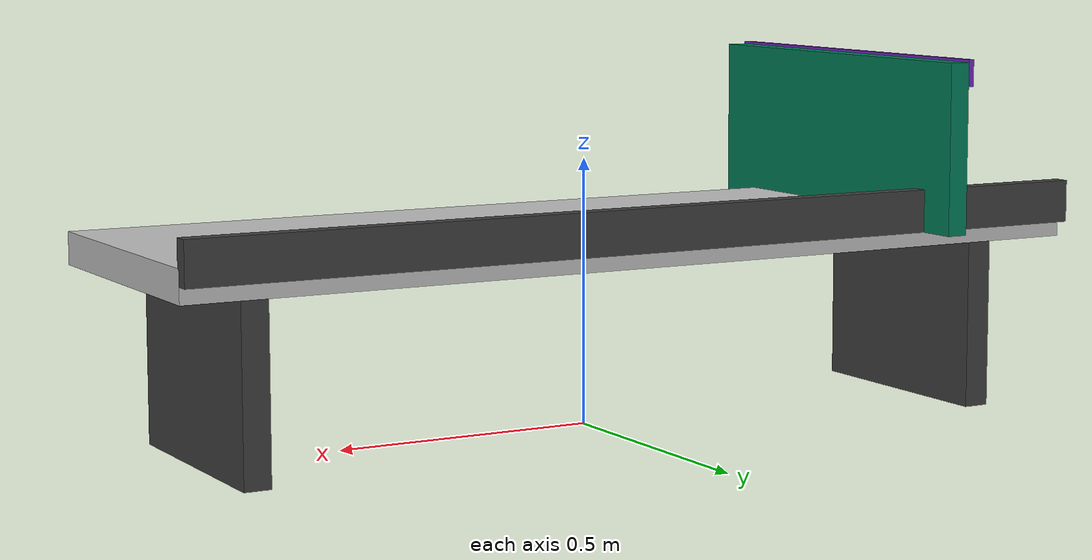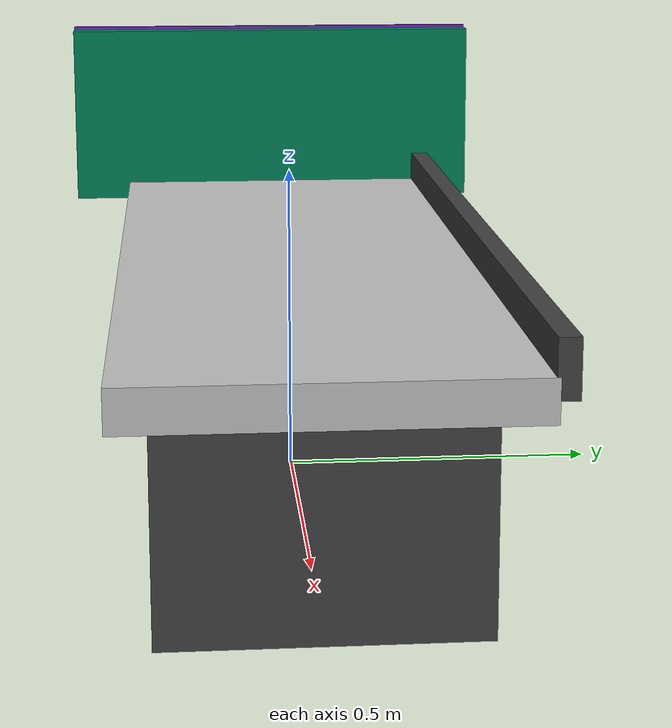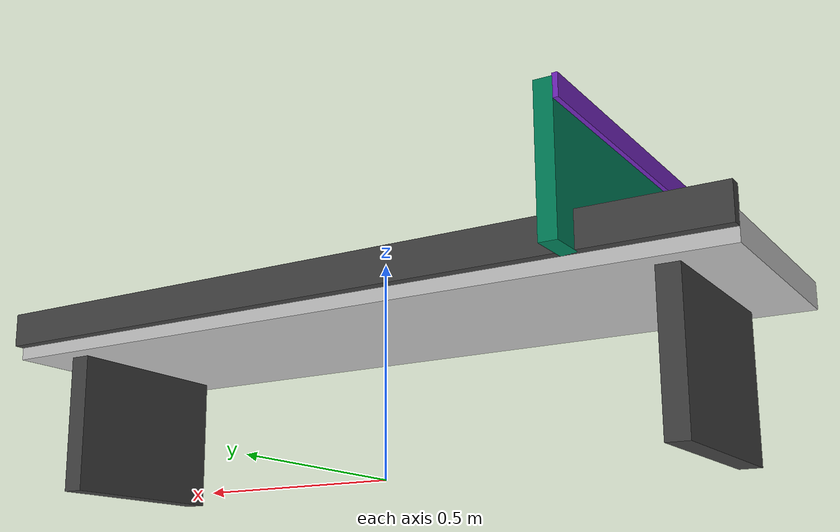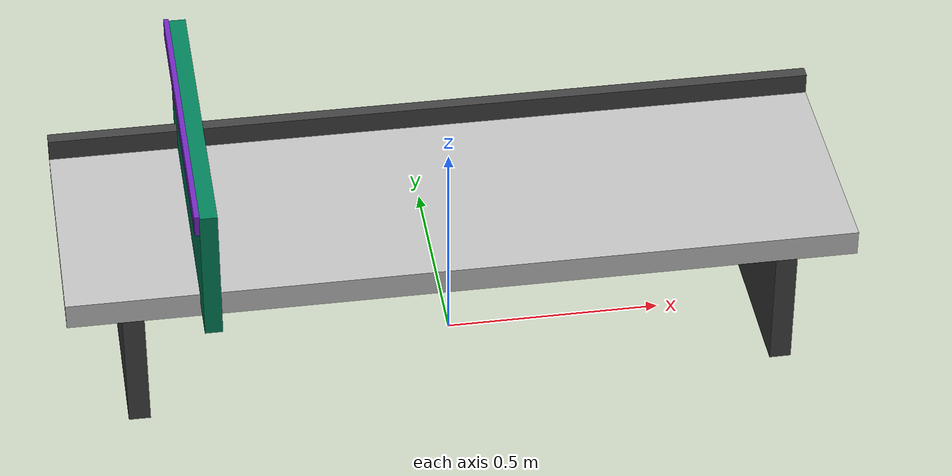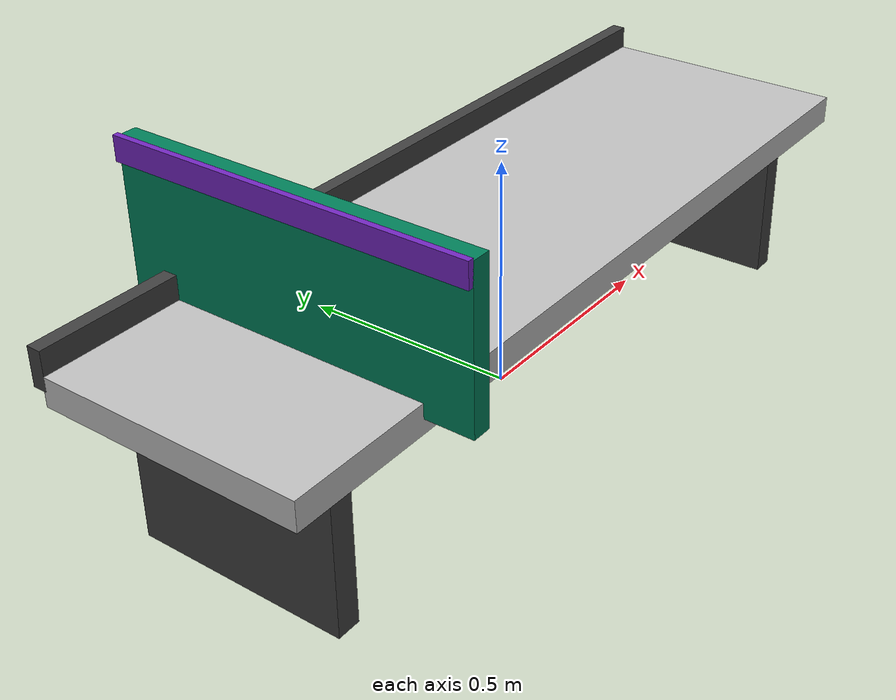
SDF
<?xml version="1.0" ?>
<sdf version="1.9">
  <model name="convenience_shelf">
    <static>true</static>

    <link name="link">

      <!-- main shelf board -->
      <collision name="shelf_collision">
        <pose>0 0 0.36 0 0 0</pose>
        <geometry>
          <box>
            <size>1.80 0.55 0.06</size>
          </box>
        </geometry>
      </collision>

      <visual name="shelf_visual">
        <pose>0 0 0.36 0 0 0</pose>
        <geometry>
          <box>
            <size>1.80 0.55 0.06</size>
          </box>
        </geometry>
        <material>
          <ambient>0.75 0.75 0.75 1</ambient>
          <diffuse>0.75 0.75 0.75 1</diffuse>
        </material>
      </visual>

      <!-- lower and smaller back board -->
      <collision name="back_collision">
        <pose>-0.58 0 0.52 0 0 0</pose>
        <geometry>
          <box>
            <size>0.04 0.75 0.32</size>
          </box>
        </geometry>
      </collision>

      <visual name="back_visual">
        <pose>-0.58 0 0.52 0 0 0</pose>
        <geometry>
          <box>
            <size>0.04 0.75 0.32</size>
          </box>
        </geometry>
        <material>
          <ambient>0.0 0.50 0.35 1</ambient>
          <diffuse>0.0 0.50 0.35 1</diffuse>
        </material>
      </visual>

      <!-- purple accent strip -->
      <visual name="accent_strip">
        <pose>-0.605 0 0.66 0 0 0</pose>
        <geometry>
          <box>
            <size>0.012 0.75 0.05</size>
          </box>
        </geometry>
        <material>
          <ambient>0.45 0.15 0.75 1</ambient>
          <diffuse>0.45 0.15 0.75 1</diffuse>
        </material>
      </visual>

      <!-- front lip -->
      <collision name="front_lip_collision">
        <pose>0 0.285 0.40 0 0 0</pose>
        <geometry>
          <box>
            <size>1.80 0.03 0.08</size>
          </box>
        </geometry>
      </collision>

      <visual name="front_lip">
        <pose>0 0.285 0.40 0 0 0</pose>
        <geometry>
          <box>
            <size>1.80 0.03 0.08</size>
          </box>
        </geometry>
        <material>
          <ambient>0.25 0.25 0.25 1</ambient>
          <diffuse>0.25 0.25 0.25 1</diffuse>
        </material>
      </visual>

      <!-- left support -->
      <collision name="left_support_collision">
        <pose>-0.75 0 0.18 0 0 0</pose>
        <geometry>
          <box>
            <size>0.05 0.45 0.36</size>
          </box>
        </geometry>
      </collision>

      <visual name="left_support">
        <pose>-0.75 0 0.18 0 0 0</pose>
        <geometry>
          <box>
            <size>0.05 0.45 0.36</size>
          </box>
        </geometry>
        <material>
          <ambient>0.25 0.25 0.25 1</ambient>
          <diffuse>0.25 0.25 0.25 1</diffuse>
        </material>
      </visual>

      <!-- right support -->
      <collision name="right_support_collision">
        <pose>0.75 0 0.18 0 0 0</pose>
        <geometry>
          <box>
            <size>0.05 0.45 0.36</size>
          </box>
        </geometry>
      </collision>

      <visual name="right_support">
        <pose>0.75 0 0.18 0 0 0</pose>
        <geometry>
          <box>
            <size>0.05 0.45 0.36</size>
          </box>
        </geometry>
        <material>
          <ambient>0.25 0.25 0.25 1</ambient>
          <diffuse>0.25 0.25 0.25 1</diffuse>
        </material>
      </visual>

    </link>
  </model>
</sdf>
